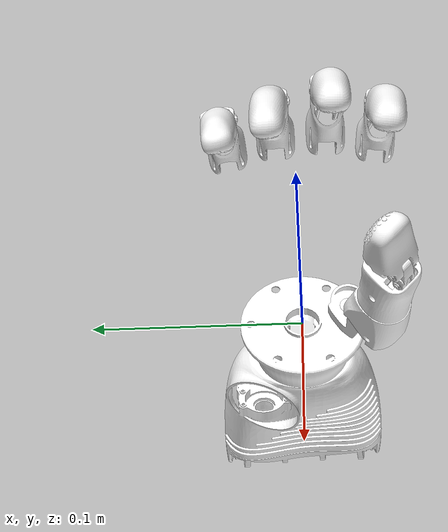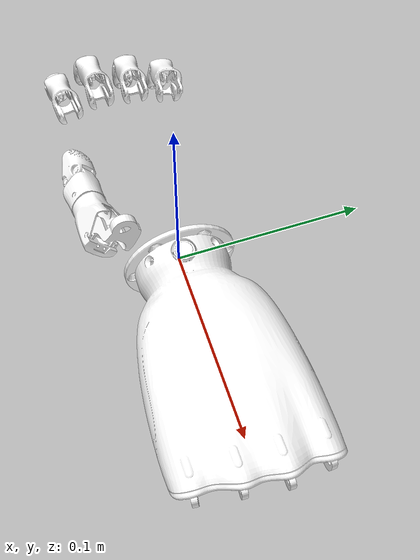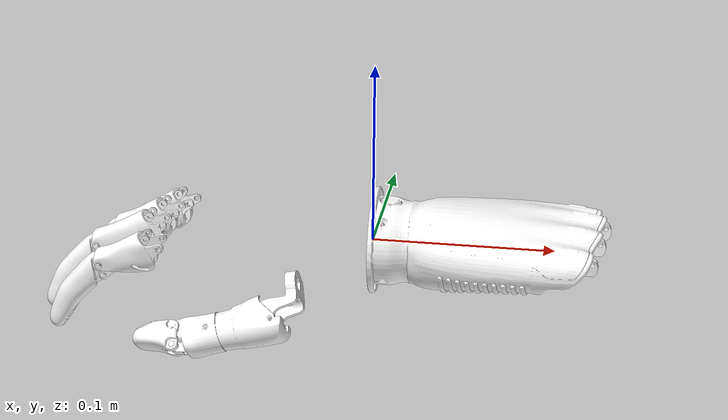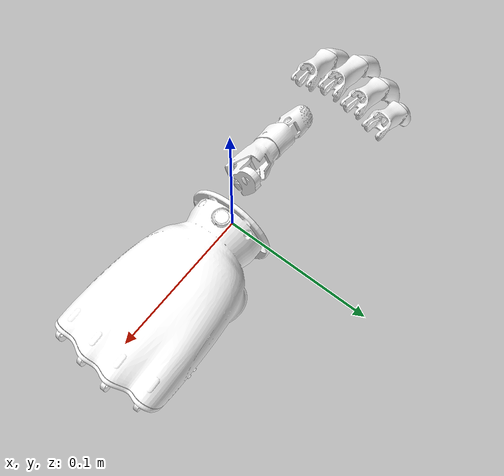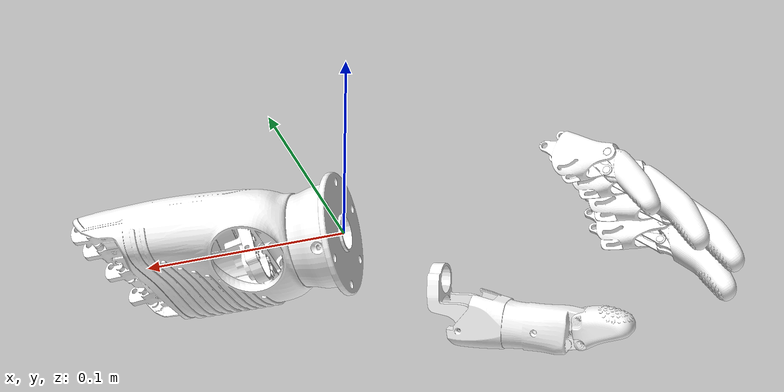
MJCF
<mujoco model="rohand_right">
  <compiler angle="radian"/>
  <asset>
    <mesh name="base_link" content_type="model/stl" file="../assets/meshes_r/base_link.STL"/>
    <mesh name="if_proximal_link" content_type="model/stl" file="../assets/meshes_r/if_proximal_link.STL"/>
    <mesh name="if_distal_link" content_type="model/stl" file="../assets/meshes_r/if_distal_link.STL"/>
    <mesh name="if_connecting_link" content_type="model/stl" file="../assets/meshes_r/if_connecting_link.STL"/>
    <mesh name="mf_proximal_link" content_type="model/stl" file="../assets/meshes_r/mf_proximal_link.STL"/>
    <mesh name="mf_distal_link" content_type="model/stl" file="../assets/meshes_r/mf_distal_link.STL"/>
    <mesh name="mf_connecting_link" content_type="model/stl" file="../assets/meshes_r/mf_connecting_link.STL"/>
    <mesh name="rf_proximal_link" content_type="model/stl" file="../assets/meshes_r/rf_proximal_link.STL"/>
    <mesh name="rf_distal_link" content_type="model/stl" file="../assets/meshes_r/rf_distal_link.STL"/>
    <mesh name="rf_connecting_link" content_type="model/stl" file="../assets/meshes_r/rf_connecting_link.STL"/>
    <mesh name="lf_proximal_link" content_type="model/stl" file="../assets/meshes_r/lf_proximal_link.STL"/>
    <mesh name="lf_distal_link" content_type="model/stl" file="../assets/meshes_r/lf_distal_link.STL"/>
    <mesh name="lf_connecting_link" content_type="model/stl" file="../assets/meshes_r/lf_connecting_link.STL"/>
    <mesh name="th_root_link" content_type="model/stl" file="../assets/meshes_r/th_root_link.STL"/>
    <mesh name="th_proximal_link" content_type="model/stl" file="../assets/meshes_r/th_proximal_link.STL"/>
    <mesh name="th_slider_link" content_type="model/stl" file="../assets/meshes_r/th_slider_link.STL"/>
    <mesh name="th_connecting_link" content_type="model/stl" file="../assets/meshes_r/th_connecting_link.STL"/>
    <mesh name="th_distal_link" content_type="model/stl" file="../assets/meshes_r/th_distal_link.STL"/>
    <mesh name="th_slider_connecting_link" content_type="model/stl" file="../assets/meshes_r/th_slider_connecting_link.STL"/>
  </asset>
  <worldbody>
    <body name="base_link" gravcomp="1">
      <geom type="mesh" rgba="1 1 1 1" mesh="base_link"/>
    </body>
    <body name="if_proximal_link" pos="-0.11237 -0.038159 0.0019394" quat="0.998185 0.0437218 -0.00181175 0.0413629" gravcomp="1">
      <inertial pos="-0.0163989 0.00759959 -0.00651026" quat="-0.000214193 0.647755 -0.000123063 0.761848" mass="0.0293523" diaginertia="2.37498e-07 2.32573e-07 1.02726e-07"/>
      <joint name="if_proximal_link" pos="0 0 0" axis="0 -1 0" ref="0.3" damping="0.01"/>
      <geom type="mesh" rgba="1 1 1 1" mesh="if_proximal_link"/>
      <body name="if_distal_link" pos="-0.034068 0 -0.011383" gravcomp="1">
        <inertial pos="0.000662394 0.00709506 -0.00281286" quat="0.5 0.5 -0.5 0.5" mass="0.038308" diaginertia="1.56486e-6 1.56366e-6 9.99018e-7"/>
        <joint name="if_distal_link" pos="0 0 0" axis="0 -1 0" damping="0.01"/>
        <geom type="mesh" rgba="1 1 1 1" mesh="if_distal_link"/>
      </body>
    </body>
    <body name="if_connecting_link" pos="-0.11996 -0.036476 0.0065579" quat="0.998185 0.0437218 -0.00181175 0.0413629" gravcomp="1">
      <inertial pos="-0.0118153 0.00489999 -0.0121371" quat="0.650059 0.27825 0.27825 0.650059" mass="0.00200341" diaginertia="2.67058e-08 2.63769e-08 3.50323e-10"/>
      <joint name="if_connecting_link" pos="0 0 0" axis="0 -1 0"/>
      <geom type="mesh" rgba="1 1 1 1" mesh="if_connecting_link"/>
    </body>
    <body name="mf_proximal_link" pos="-0.11567 -0.018179 0.0068982" quat="0.999978 3.62962e-05 2.40067e-07 0.00661395">
      <inertial pos="-0.0179828 0.00759997 -0.00814933" quat="0.551493 0.442532 0.442482 0.551571" mass="0.0237718" diaginertia="3.62183e-07 3.54257e-07 1.37122e-07"/>
      <joint name="mf_proximal_link" pos="0 0 0" axis="0 -1 0" ref="0.3" damping="0.01"/>
      <geom type="mesh" rgba="1 1 1 1" mesh="mf_proximal_link"/>
      <body name="mf_distal_link" pos="-0.038382 0 -0.014438">
        <inertial pos="0.000586079 0.00709507 -0.00284487" quat="0.5 0.5 -0.5 0.5" mass="0.0318308" diaginertia="1.56534e-06 1.56318e-06 9.99018e-7"/>
        <joint name="mf_distal_link" pos="0 0 0" axis="0 -1 0" damping="0.01"/>
        <geom type="mesh" rgba="1 1 1 1" mesh="mf_distal_link"/>
      </body>
    </body>
    <body name="mf_connecting_link" pos="-0.12313 -0.015578 0.011298" quat="0.999978 3.62962e-05 2.40067e-07 0.00661395">
      <inertial pos="-0.0138038 0.00489999 -0.0137176" quat="0.646663 0.286053 0.286053 0.646663" mass="0.00215109" diaginertia="3.73208e-08 3.69827e-08 3.6101e-10"/>
      <joint name="mf_connecting_link" pos="0 0 0" axis="0 -1 0"/>
      <geom type="mesh" rgba="1 1 1 1" mesh="mf_connecting_link"/>
    </body>
    <body name="rf_proximal_link" pos="-0.11367 0.0018657 0.0061535" quat="0.9996 3.96941e-05 -1.12338e-06 -0.0282897">
      <inertial pos="-0.0161909 0.00759957 -0.00701117" quat="-0.000210939 0.635969 -0.000115909 0.771715" mass="0.029352" diaginertia="2.37494e-07 2.32569e-07 1.02725e-07"/>
      <joint name="rf_proximal_link" pos="0 0 0" axis="0 -1 0" ref="0.3" damping="0.01"/>
      <geom type="mesh" rgba="1 1 1 1" mesh="rf_proximal_link"/>
      <body name="rf_distal_link" pos="-0.033703 0 -0.012425">
        <inertial pos="0.000830147 0.00709507 -0.00276826" quat="0.5 0.5 -0.5 0.5" mass="0.03118308" diaginertia="1.56486e-06 1.56366e-06 9.99018e-7"/>
        <joint name="rf_distal_link" pos="0 0 0" axis="0 -1 0" damping="0.01"/>
        <geom type="mesh" rgba="1 1 1 1" mesh="rf_distal_link"/>
      </body>
    </body>
    <body name="rf_connecting_link" pos="-0.12092 0.0049808 0.010553" quat="0.9996 3.96941e-05 -1.12338e-06 -0.0282897">
      <inertial pos="-0.0113775 0.00489999 -0.0125484" quat="0.654891 0.266679 0.266679 0.654891" mass="0.00200341" diaginertia="2.67058e-08 2.63769e-08 3.50323e-10"/>
      <joint name="rf_connecting_link" pos="0 0 0" axis="0 -1 0"/>
      <geom type="mesh" rgba="1 1 1 1" mesh="rf_connecting_link"/>
    </body>
    <body name="lf_proximal_link" pos="-0.11038 0.022023 0.0042647" quat="0.997301 -0.0438454 -0.00258706 -0.0588393">
      <inertial pos="-0.0146539 0.00760051 -0.00629909" quat="-0.00016871 0.623949 -0.000134704 0.781465" mass="0.0277931" diaginertia="1.82324e-07 1.7656e-07 9.421e-08"/>
      <joint name="lf_proximal_link" pos="0 0 0" axis="0 -1 0" ref="0.3" damping="0.01"/>
      <geom type="mesh" rgba="1 1 1 1" mesh="lf_proximal_link"/>
      <body name="lf_distal_link" pos="-0.029816 0 -0.011429">
        <inertial pos="0.000767689 0.00709503 -0.00275676" quat="0.5 0.5 -0.5 0.5" mass="0.03118308" diaginertia="1.56563e-06 1.56289e-06 9.99018e-7"/>
        <joint name="lf_distal_link" pos="0 0 0" axis="0 -1 0" damping="0.01"/>
        <geom type="mesh" rgba="1 1 1 1" mesh="lf_distal_link"/>
      </body>
    </body>
    <body name="lf_connecting_link" pos="-0.11738 0.02595 0.0084121" quat="0.997301 -0.0438454 -0.00258706 -0.0588393">
      <inertial pos="-0.0100663 0.00489991 -0.0114499" quat="0.661985 0.248548 0.248548 0.661985" mass="0.00276993" diaginertia="1.94958e-08 1.92587e-08 2.55967e-10"/>
      <joint name="lf_connecting_link" pos="0 0 0" axis="0 -1 0"/>
      <geom type="mesh" rgba="1 1 1 1" mesh="lf_connecting_link"/>
    </body>
    <body name="th_root_link" pos="-0.0251932 -0.0195489 -0.0184475" quat="0.994021 -0.00070467 -0.108993 0.00642661">
      <inertial pos="-0.0453718 0.0157166 0.0271886" quat="-0.195827 0.736298 -0.199767 0.616125" mass="0.0734873" diaginertia="0.000154618 0.000128515 6.37189e-05"/>
      <joint name="th_root_link" pos="0 0 0" axis="1 0 0" ref="0.75" damping="0.05"/>
      <geom type="mesh" rgba="1 1 1 1" mesh="th_root_link"/>
      <body name="th_slider_connecting_link" pos="-0.0365651 -0.0147173 -0.00674203" quat="0.9147 -0.396163 0.0732925 -0.0317435">
        <inertial pos="-0.00324219 0.0079 -0.0044315" quat="0.67215 0.219576 0.219576 0.67215" mass="0.886531" diaginertia="1.54015e-09 1.3854e-09 1.64213e-10"/>
        <joint name="th_slider_connecting_link" pos="0 0 0" axis="0 1 0" ref="0.35" damping="0.05"/>
        <geom type="mesh" rgba="1 1 1 1" mesh="th_slider_connecting_link"/>
        <body name="th_slider_link" pos="-0.00648323 0 -0.00886272" quat="0.46322 0.534254 -0.534254 -0.46322">
          <inertial pos="-0.00789993 -0.00171494 0.0143554" quat="0.705724 0.0442026 -0.0442026 0.705724" mass="0.03164989" diaginertia="1.74468e-07 1.47922e-07 3.02562e-08"/>
          <joint name="th_slider_link" pos="0 0 0" axis="1 0 0" damping="0.05"/>
          <geom type="mesh" rgba="1 1 1 1" mesh="th_slider_link"/>
          <body name="th_connecting_link" pos="-0.0124999 -0.00537962 0.0318921" quat="0.707107 -0.000620187 0.707107 0.00062018">
            <inertial pos="-0.00567321 0.000333704 0.00445241" quat="0.525781 0.525781 0.472815 0.472815" mass="0.0210992" diaginertia="6.94037e-09 5.14342e-09 3.44915e-09"/>
            <joint name="th_connecting_link" pos="0 0 0" axis="0 0 1" damping="0.05"/>
            <geom type="mesh" rgba="1 1 1 1" mesh="th_connecting_link"/>
            <body name="th_distal_link" pos="-0.00985073 0.000986428 0.0117">
              <inertial pos="0.000439708 0.0113075 -0.00788321" quat="0.707107 0 0 0.707107" mass="0.182377" diaginertia="1.23939e-05 1.23782e-05 6.36213e-6"/>
              <joint name="th_distal_link" pos="0 0 0" axis="0 0 1"/>
              <geom type="mesh" rgba="1 1 1 1" mesh="th_distal_link"/>
            </body>
          </body>
          <body name="th_proximal_link" pos="-0.0148999 -0.00029573 0.00254324" quat="0.927732 0.0537576 -0.0213666 0.368738">
            <inertial pos="0.00722902 -0.00254587 0.0089212" quat="0.925011 -0.0885178 0.0349618 -0.367826" mass="0.0544409" diaginertia="2.19956e-04 1.9818e-04 3.24991e-05"/>
            <joint name="th_proximal_link" pos="0 0 0" axis="0 0 -1" type="slide" damping="0.5"/>
            <geom type="mesh" rgba="1 1 1 1" mesh="th_proximal_link"/>
          </body>
        </body>
      </body>
    </body>
  </worldbody>
  <contact>
    <exclude body1="base_link" body2="if_proximal_link"/>
    <exclude body1="base_link" body2="if_distal_link"/>
    <exclude body1="base_link" body2="if_connecting_link"/>
    <exclude body1="if_connecting_link" body2="if_proximal_link"/>
    <exclude body1="if_connecting_link" body2="if_distal_link"/>
    <exclude body1="if_proximal_link" body2="if_distal_link"/>
    <exclude body1="base_link" body2="mf_proximal_link"/>
    <exclude body1="base_link" body2="mf_distal_link"/>
    <exclude body1="base_link" body2="mf_connecting_link"/>
    <exclude body1="mf_connecting_link" body2="mf_proximal_link"/>
    <exclude body1="mf_connecting_link" body2="mf_distal_link"/>
    <exclude body1="mf_proximal_link" body2="mf_distal_link"/>
    <exclude body1="base_link" body2="rf_proximal_link"/>
    <exclude body1="base_link" body2="rf_distal_link"/>
    <exclude body1="base_link" body2="rf_connecting_link"/>
    <exclude body1="rf_connecting_link" body2="rf_proximal_link"/>
    <exclude body1="rf_connecting_link" body2="rf_distal_link"/>
    <exclude body1="rf_proximal_link" body2="rf_distal_link"/>
    <exclude body1="base_link" body2="lf_proximal_link"/>
    <exclude body1="base_link" body2="lf_distal_link"/>
    <exclude body1="base_link" body2="lf_connecting_link"/>
    <exclude body1="lf_connecting_link" body2="lf_proximal_link"/>
    <exclude body1="lf_connecting_link" body2="lf_distal_link"/>
    <exclude body1="lf_proximal_link" body2="lf_distal_link"/>
    <exclude body1="th_root_link" body2="base_link"/>
    <exclude body1="th_root_link" body2="th_slider_link"/>
    <exclude body1="th_root_link" body2="th_connecting_link"/>
    <exclude body1="th_root_link" body2="th_distal_link"/>
    <exclude body1="th_root_link" body2="th_slider_link"/>
    <exclude body1="th_root_link" body2="th_proximal_link"/>
    <exclude body1="th_root_link" body2="th_slider_connecting_link"/>
    <exclude body1="th_slider_connecting_link" body2="base_link"/>
    <exclude body1="th_slider_connecting_link" body2="th_slider_link"/>
    <exclude body1="th_slider_connecting_link" body2="th_connecting_link"/>
    <exclude body1="th_slider_connecting_link" body2="th_distal_link"/>
    <exclude body1="th_slider_connecting_link" body2="th_proximal_link"/>
    <exclude body1="th_slider_link" body2="base_link"/>
    <exclude body1="th_slider_link" body2="th_connecting_link"/>
    <exclude body1="th_slider_link" body2="th_distal_link"/>
    <exclude body1="th_slider_link" body2="th_proximal_link"/>
    <exclude body1="th_connecting_link" body2="base_link"/>
    <exclude body1="th_connecting_link" body2="th_distal_link"/>
    <exclude body1="th_connecting_link" body2="th_proximal_link"/>
    <exclude body1="th_distal_link" body2="base_link"/>
    <exclude body1="th_distal_link" body2="th_proximal_link"/>
    <exclude body1="th_proximal_link" body2="base_link"/>
  </contact>
  <equality>
    <connect body1="if_distal_link" body2="if_connecting_link" anchor="0.0015 0.005 -0.007" solimp="0.95 0.99 0.001" solref="0.005 1"/>
    <connect body1="mf_distal_link" body2="mf_connecting_link" anchor="0.0015 0.005 -0.00734" solimp="0.95 0.99 0.001" solref="0.005 1"/>
    <connect body1="rf_distal_link" body2="rf_connecting_link" anchor="0.0015 0.005 -0.00734" solimp="0.95 0.99 0.001" solref="0.005 1"/>
    <connect body1="lf_distal_link" body2="lf_connecting_link" anchor="0.0015 0.005 -0.00734" solimp="0.99 0.99 0.001" solref="0.001 1"/>
    <connect body1="th_proximal_link" body2="th_root_link" anchor="0.009 -0.0095 -0.018" solimp="0.95 0.99 0.001" solref="0.005 1"/>
    <connect body1="th_distal_link" body2="th_proximal_link" anchor="-0 0.01 0.001" solimp="0.8 0.95 0.001" solref="0.005 1"/>
  </equality>
  <actuator>
    <position name="index_finger" joint="if_proximal_link" kp="1" ctrlrange="0 1.44"/>
    <position name="middle_finger" joint="mf_proximal_link" kp="1" ctrlrange="0 1.44"/>
    <position name="ring_finger" joint="rf_proximal_link" kp="1" ctrlrange="0 1.44"/>
    <position name="little_finger" joint="lf_proximal_link" kp="1" ctrlrange="0 1.44"/>
    <position name="thumb_root" joint="th_root_link" kp="1" ctrlrange="0 1.57"/>
    <position name="thumb" joint="th_slider_connecting_link" kp="1" ctrlrange="0 0.7"/>
  </actuator>
</mujoco>
